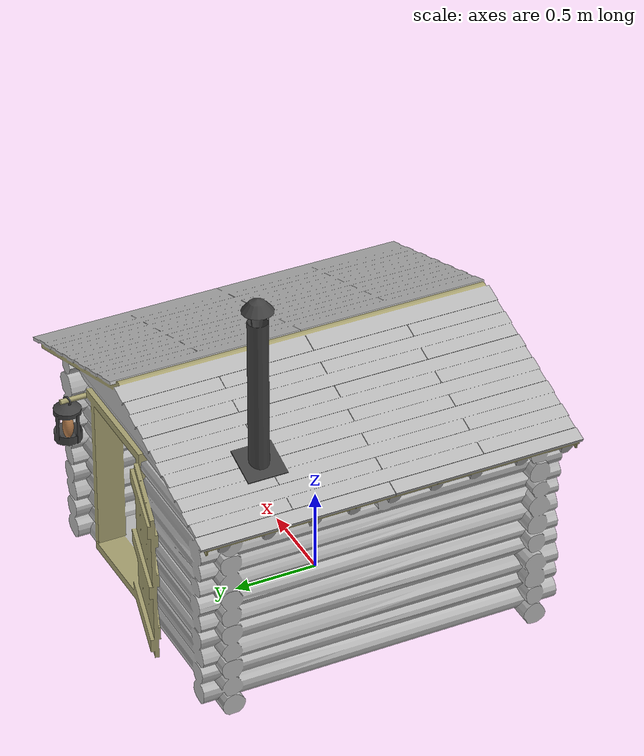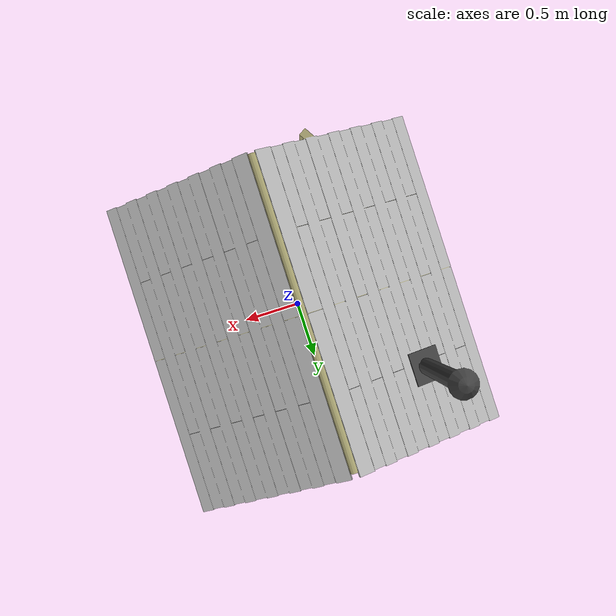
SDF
<?xml version="1.0" ?>
<sdf version='1.5'>
  <model name='log_cabin'>
    <static>true</static>
      <link name='log_cabin'>
        <pose frame=''>0 0 0 0 0 0</pose>
         <collision name='log_cabin'>
          <geometry>
            <mesh>
              <uri>model://log_cabin/log_cabin.dae</uri>
            </mesh>
          </geometry>
        </collision>
        <visual name='log_cabin'>
        <cast_shadows>false</cast_shadows>
          <geometry>
            <mesh>
              <scale>0.2 0.2 0.2</scale>
              <uri>model://log_cabin/log_cabin.dae</uri>
            </mesh>
          </geometry>
          <material>
            <script>
              <name>log_cabin</name>
              <uri>model://log_cabin/log_cabin.dae</uri>
            </script>
          </material>
        </visual>
      </link>
  </model>
</sdf>
